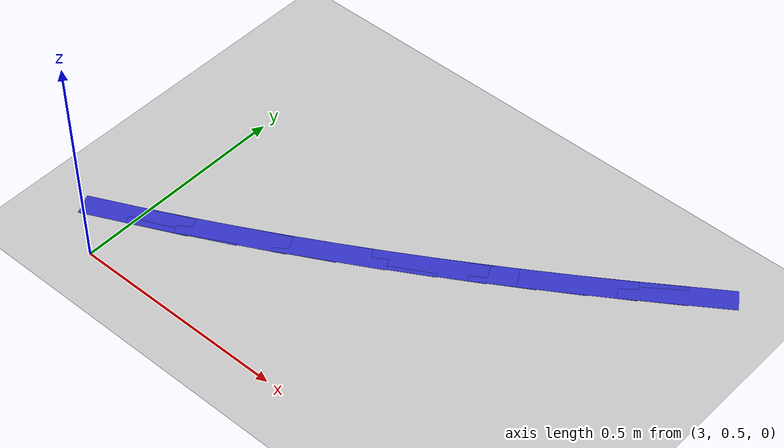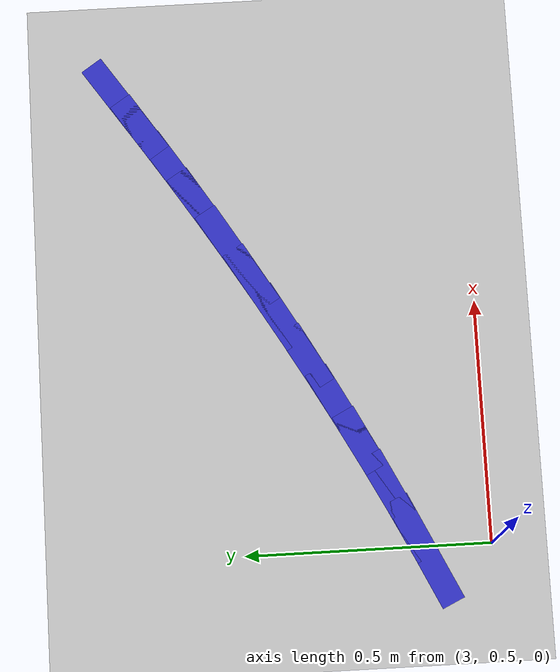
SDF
<sdf version="1.10">
 <world name="empty">
  <model name="ground_plane">
   <static>true</static>
   <link name="link">
    <collision name="collision">
     <geometry><plane><normal>0 0 1</normal><size>100 100</size></plane></geometry>
    </collision>
    <visual name="visual">
     <geometry><plane><normal>0 0 1</normal><size>100 100</size></plane></geometry>
     <material>
      <ambient>0.800000012 0.800000012 0.800000012 1</ambient>
      <diffuse>0.800000012 0.800000012 0.800000012 1</diffuse>
      <specular>0.800000012 0.800000012 0.800000012 1</specular>
     </material>
    </visual>
    <inertial>
     <mass>1</mass>
     <inertia><ixx>1</ixx><ixy>0</ixy><ixz>0</ixz><iyy>1</iyy><iyz>0</iyz><izz>1</izz></inertia>
    </inertial>
   </link>
  </model>
  <model name="unit_box_25">
   <link name="box_link">
    <collision name="box_collision">
     <geometry><box><size>0.000005 0.000005 0.000005</size></box></geometry>
    </collision>
    <visual name="box_visual">
     <geometry><box><size>0.24 0.05 0.0005</size></box></geometry>
     <material>
      <ambient>0.300000012 0.300000012 0.300000012 1</ambient>
      <diffuse>0.2 0.2 0.8 1</diffuse>
      <specular>1 1 1 1</specular>
     </material>
    </visual>
    <pose>2.992376576704706 0.6364017689392651 0 0 0 0.4432758721547199</pose>
   </link>
   <static>false</static>
  </model>
  <model name="unit_box_26">
   <link name="box_link">
    <collision name="box_collision">
     <geometry><box><size>0.000005 0.000005 0.000005</size></box></geometry>
    </collision>
    <visual name="box_visual">
     <geometry><box><size>0.24 0.05 0.0005</size></box></geometry>
     <material>
      <ambient>0.300000012 0.300000012 0.300000012 1</ambient>
      <diffuse>0.2 0.2 0.8 1</diffuse>
      <specular>1 1 1 1</specular>
     </material>
    </visual>
    <pose>3.0859456724164414 0.6827586135819992 0 0 0 0.4599841366895155</pose>
   </link>
   <static>false</static>
  </model>
  <model name="unit_box_27">
   <link name="box_link">
    <collision name="box_collision">
     <geometry><box><size>0.000005 0.000005 0.000005</size></box></geometry>
    </collision>
    <visual name="box_visual">
     <geometry><box><size>0.24 0.05 0.0005</size></box></geometry>
     <material>
      <ambient>0.300000012 0.300000012 0.300000012 1</ambient>
      <diffuse>0.2 0.2 0.8 1</diffuse>
      <specular>1 1 1 1</specular>
     </material>
    </visual>
    <pose>3.1780616078136736 0.7302779864763335 0 0 0 0.47625878378315817</pose>
   </link>
   <static>false</static>
  </model>
  <model name="unit_box_28">
   <link name="box_link">
    <collision name="box_collision">
     <geometry><box><size>0.000005 0.000005 0.000005</size></box></geometry>
    </collision>
    <visual name="box_visual">
     <geometry><box><size>0.24 0.05 0.0005</size></box></geometry>
     <material>
      <ambient>0.300000012 0.300000012 0.300000012 1</ambient>
      <diffuse>0.2 0.2 0.8 1</diffuse>
      <specular>1 1 1 1</specular>
     </material>
    </visual>
    <pose>3.2687862195055333 0.7789104183349667 0 0 0 0.4920657430277577</pose>
   </link>
   <static>false</static>
  </model>
  <model name="unit_box_29">
   <link name="box_link">
    <collision name="box_collision">
     <geometry><box><size>0.000005 0.000005 0.000005</size></box></geometry>
    </collision>
    <visual name="box_visual">
     <geometry><box><size>0.24 0.05 0.0005</size></box></geometry>
     <material>
      <ambient>0.300000012 0.300000012 0.300000012 1</ambient>
      <diffuse>0.2 0.2 0.8 1</diffuse>
      <specular>1 1 1 1</specular>
     </material>
    </visual>
    <pose>3.3581813441011485 0.8286064398705966 0 0 0 0.5073725413413152</pose>
   </link>
   <static>false</static>
  </model>
  <model name="unit_box_30">
   <link name="box_link">
    <collision name="box_collision">
     <geometry><box><size>0.000005 0.000005 0.000005</size></box></geometry>
    </collision>
    <visual name="box_visual">
     <geometry><box><size>0.24 0.05 0.0005</size></box></geometry>
     <material>
      <ambient>0.300000012 0.300000012 0.300000012 1</ambient>
      <diffuse>0.2 0.2 0.8 1</diffuse>
      <specular>1 1 1 1</specular>
     </material>
    </visual>
    <pose>3.446308818209646 0.8793165817959208 0 0 0 0.522148421082413</pose>
   </link>
   <static>false</static>
  </model>
  <model name="unit_box_31">
   <link name="box_link">
    <collision name="box_collision">
     <geometry><box><size>0.000005 0.000005 0.000005</size></box></geometry>
    </collision>
    <visual name="box_visual">
     <geometry><box><size>0.24 0.05 0.0005</size></box></geometry>
     <material>
      <ambient>0.300000012 0.300000012 0.300000012 1</ambient>
      <diffuse>0.2 0.2 0.8 1</diffuse>
      <specular>1 1 1 1</specular>
     </material>
    </visual>
    <pose>3.533230478440151 0.9309913748236369 0 0 0 0.5363644291603314</pose>
   </link>
   <static>false</static>
  </model>
  <model name="unit_box_32">
   <link name="box_link">
    <collision name="box_collision">
     <geometry><box><size>0.000005 0.000005 0.000005</size></box></geometry>
    </collision>
    <visual name="box_visual">
     <geometry><box><size>0.24 0.05 0.0005</size></box></geometry>
     <material>
      <ambient>0.300000012 0.300000012 0.300000012 1</ambient>
      <diffuse>0.2 0.2 0.8 1</diffuse>
      <specular>1 1 1 1</specular>
     </material>
    </visual>
    <pose>3.619008161401794 0.9835813496664431 0 0 0 0.5499934777234783</pose>
   </link>
   <static>false</static>
  </model>
  <model name="unit_box_33">
   <link name="box_link">
    <collision name="box_collision">
     <geometry><box><size>0.000005 0.000005 0.000005</size></box></geometry>
    </collision>
    <visual name="box_visual">
     <geometry><box><size>0.24 0.05 0.0005</size></box></geometry>
     <material>
      <ambient>0.300000012 0.300000012 0.300000012 1</ambient>
      <diffuse>0.2 0.2 0.8 1</diffuse>
      <specular>1 1 1 1</specular>
     </material>
    </visual>
    <pose>3.703703703703704 1.037037037037037 0 0 0 0.5630103777263467</pose>
   </link>
   <static>false</static>
  </model>
  <model name="unit_box_34">
   <link name="box_link">
    <collision name="box_collision">
     <geometry><box><size>0.000005 0.000005 0.000005</size></box></geometry>
    </collision>
    <visual name="box_visual">
     <geometry><box><size>0.24 0.05 0.0005</size></box></geometry>
     <material>
      <ambient>0.300000012 0.300000012 0.300000012 1</ambient>
      <diffuse>0.2 0.2 0.8 1</diffuse>
      <specular>1 1 1 1</specular>
     </material>
    </visual>
    <pose>3.7873789419550055 1.0913089676481167 0 0 0 0.5753918472868415</pose>
   </link>
   <static>false</static>
  </model>
  <model name="unit_box_35">
   <link name="box_link">
    <collision name="box_collision">
     <geometry><box><size>0.000005 0.000005 0.000005</size></box></geometry>
    </collision>
    <visual name="box_visual">
     <geometry><box><size>0.24 0.05 0.0005</size></box></geometry>
     <material>
      <ambient>0.300000012 0.300000012 0.300000012 1</ambient>
      <diffuse>0.2 0.2 0.8 1</diffuse>
      <specular>1 1 1 1</specular>
     </material>
    </visual>
    <pose>3.8700957127648277 1.1463476722123798 0 0 0 0.5871164972395609</pose>
   </link>
   <static>false</static>
  </model>
  <model name="unit_box_36">
   <link name="box_link">
    <collision name="box_collision">
     <geometry><box><size>0.000005 0.000005 0.000005</size></box></geometry>
    </collision>
    <visual name="box_visual">
     <geometry><box><size>0.24 0.05 0.0005</size></box></geometry>
     <material>
      <ambient>0.300000012 0.300000012 0.300000012 1</ambient>
      <diffuse>0.2 0.2 0.8 1</diffuse>
      <specular>1 1 1 1</specular>
     </material>
    </visual>
    <pose>3.951915852742299 1.2021036814425246 0 0 0 0.598164796661388</pose>
   </link>
   <static>false</static>
  </model>
 </world>
</sdf>
